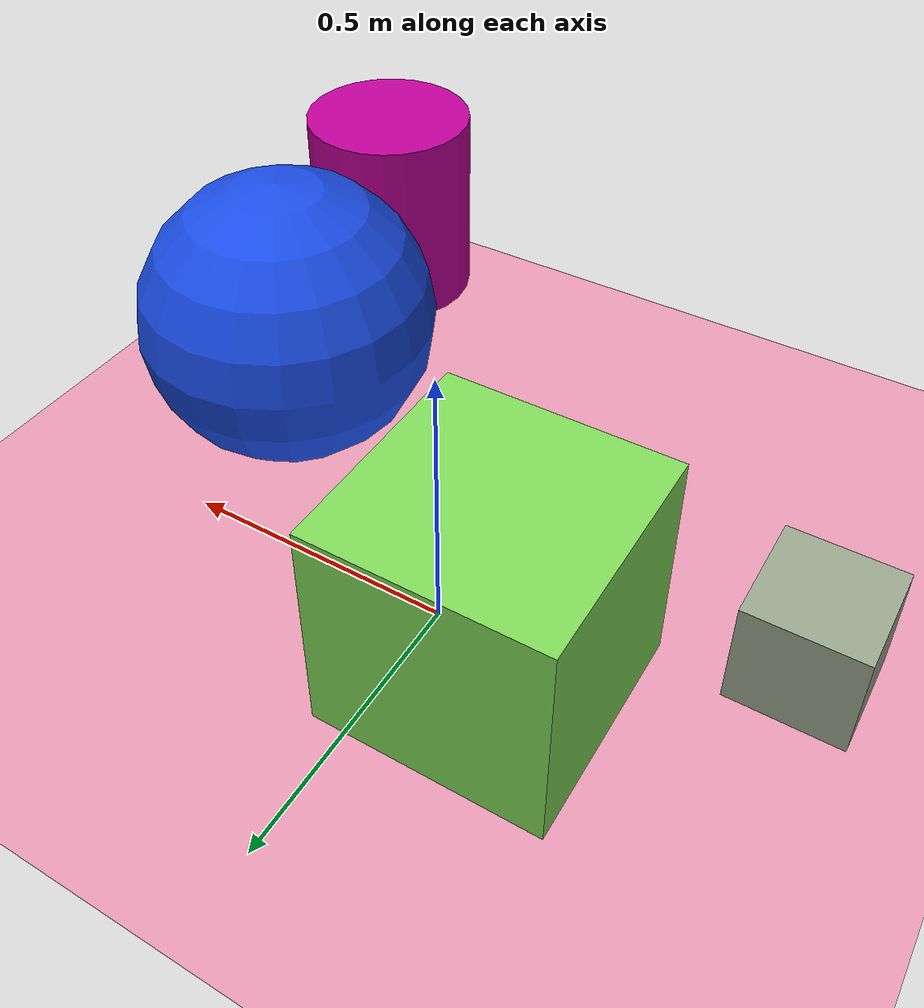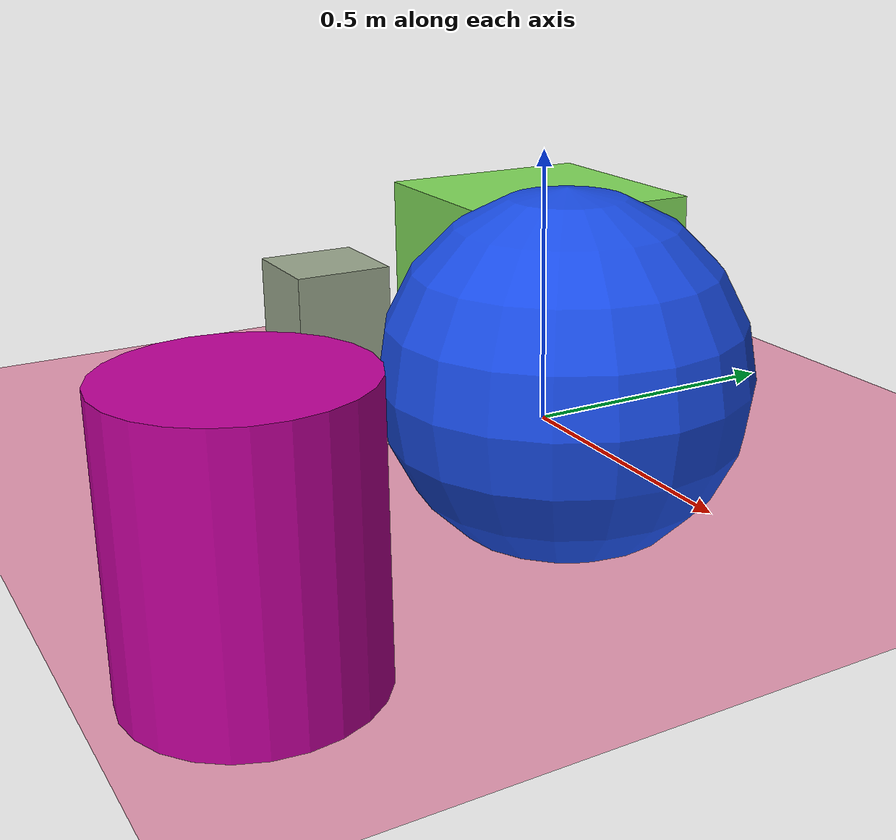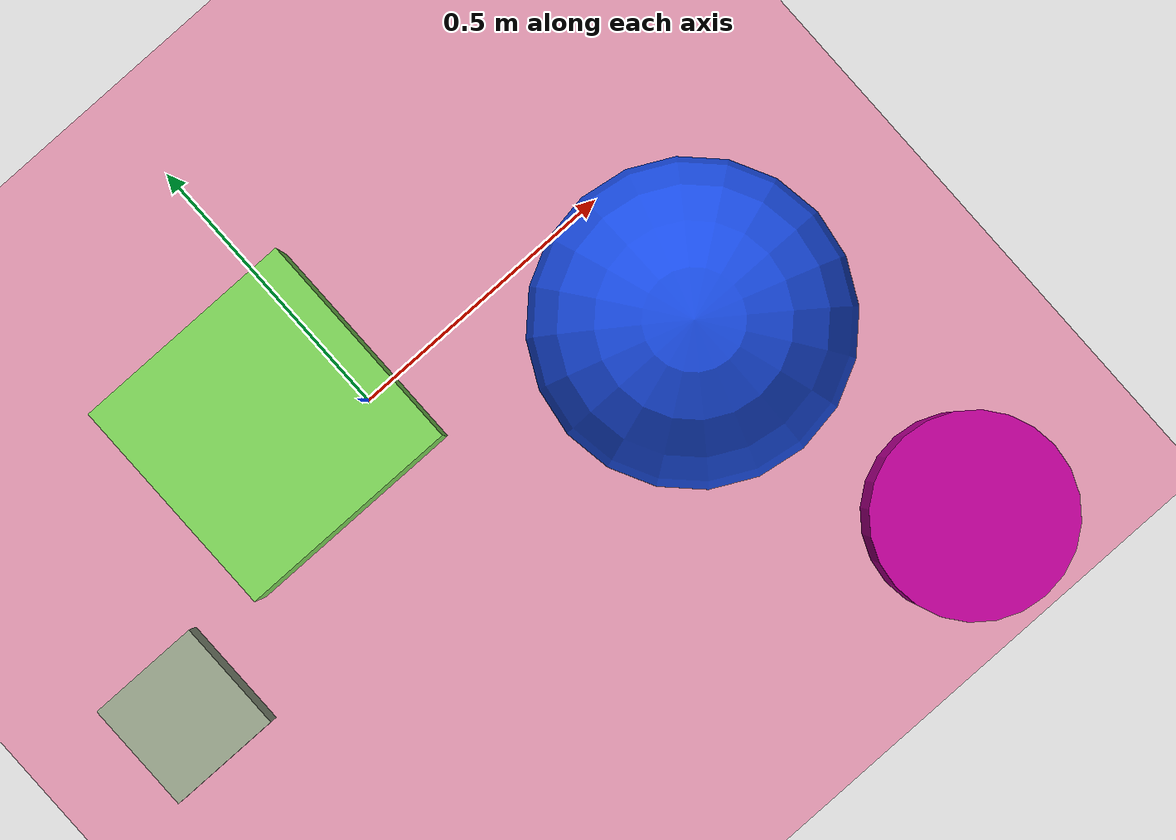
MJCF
<mujoco>
   <asset>
<texture type="skybox" builtin="gradient" rgb1="0.8 0.3 0.5" rgb2="0.5 0.2 0.9" width="256" height="256"/>
<texture name="gradient_0" builtin="gradient" rgb1="0.7 0.9 1.0" rgb2="0.5 0.4 0.1" width="200" height="200"/>
<texture name="gradient_1" builtin="gradient" rgb1="0.6 0.9 0.2" rgb2="0.4 0.8 0.5" width="200" height="200"/>
<texture name="flat_2" builtin="flat" rgb1="0.1 0.3 0.9" rgb2="0.1 0.3 0.9"  width="200" height="200"/>
<texture name="gradient_3" builtin="gradient" rgb1="0.7 0.0 0.7" rgb2="0.8 0.0 0.5" width="200" height="200"/><material name="gradient_0_mat" reflectance="0" texture="gradient_0" texuniform="true"/>
<material name="gradient_1_mat" reflectance="0" texture="gradient_1" texuniform="true"/>
<material name="flat_2_mat" reflectance="0" texture="flat_2" texuniform="true"/>
<material name="gradient_3_mat" reflectance="0" texture="gradient_3" texuniform="true"/>
   </asset>

   <worldbody>
      <light diffuse=".9 .9 .9" pos="0 0 3" dir="0 0 -1"/>
     <geom type="plane" size="1 1 0.1" rgba="0.9 0.6 0.7 1"/>
<geom type="box" pos="-0.56 -0.19 0.1" size="0.1 0.1 0.1" material="gradient_0_mat" />
<geom type="box" pos="-0.14 0.07 0.2" size="0.2 0.2 0.2" material="gradient_1_mat" />
<geom type="sphere" pos="0.48 -0.26 0.27" size="0.27 0.27 0.27" material="flat_2_mat" />
<geom type="cylinder" pos="0.61 -0.79 0.2" size="0.17 0.2 0.2" material="gradient_3_mat" /><camera euler="60 0 180" fovy="60" name="camera_a" pos="0 -1.5 1"></camera>   </worldbody>
</mujoco>
